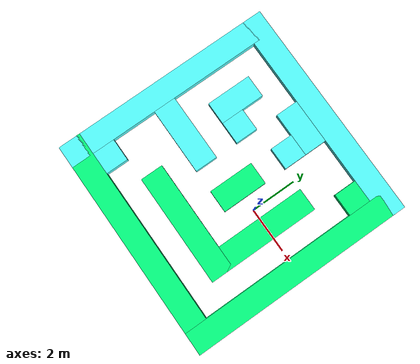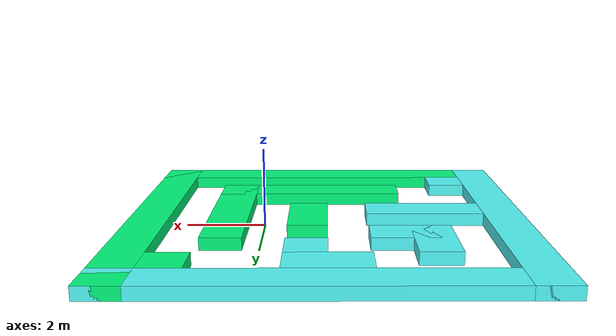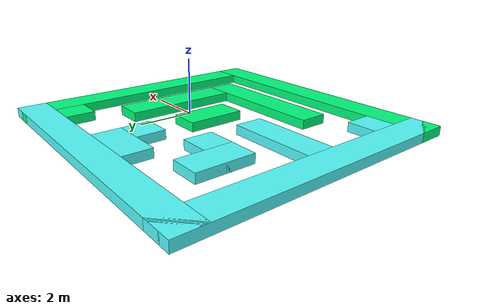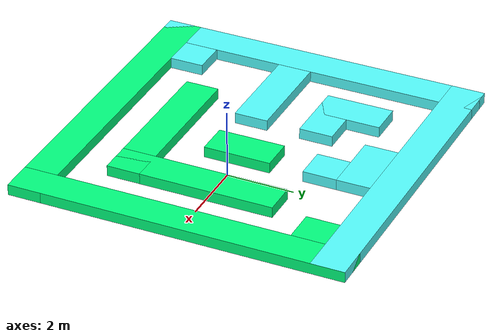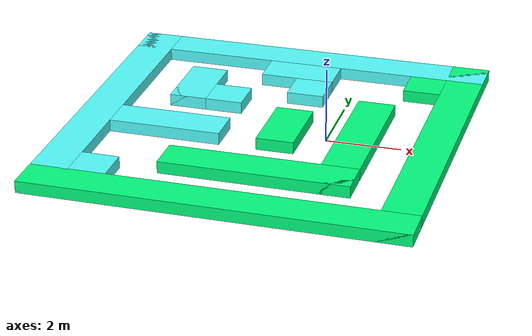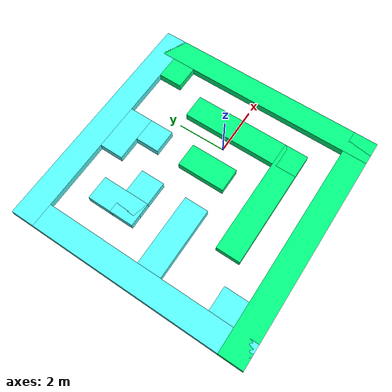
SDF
<?xml version='1.0'?>
<sdf version='1.6'>
  <model name='gait_maze2.0'>
    <link name='Wall_10'>
      <pose frame=''>-4.10576 2 0 0 0 -1.5708</pose>
      <self_collide>0</self_collide>
      <kinematic>0</kinematic>
      <visual name='Wall_10_Visual'>
        <pose frame=''>0 0 0.16 0 -0 0</pose>
        <geometry>
          <box>
            <size>2 1 0.32</size>
          </box>
        </geometry>
        <material>
          <script>
            <uri>file://media/materials/scripts/gazebo.material</uri>
            <name>Gazebo/Grey</name>
          </script>
          <ambient>0.333333 1 1 1</ambient>
          <diffuse>0.7 0.7 0.7 1</diffuse>
          <specular>0.01 0.01 0.01 1</specular>
          <emissive>0 0 0 1</emissive>
        </material>
        <cast_shadows>1</cast_shadows>
        <transparency>0</transparency>
      </visual>
      <collision name='Wall_10_Collision'>
        <laser_retro>0</laser_retro>
        <max_contacts>10</max_contacts>
        <pose frame=''>0 0 0.16 0 -0 0</pose>
        <geometry>
          <box>
            <size>2 1 0.32</size>
          </box>
        </geometry>
        <surface>
          <friction>
            <ode>
              <mu>1</mu>
              <mu2>1</mu2>
              <fdir1>0 0 0</fdir1>
              <slip1>0</slip1>
              <slip2>0</slip2>
            </ode>
            <torsional>
              <coefficient>1</coefficient>
              <patch_radius>0</patch_radius>
              <surface_radius>0</surface_radius>
              <use_patch_radius>1</use_patch_radius>
              <ode>
                <slip>0</slip>
              </ode>
            </torsional>
          </friction>
          <bounce>
            <restitution_coefficient>0</restitution_coefficient>
            <threshold>1e+06</threshold>
          </bounce>
          <contact>
            <collide_without_contact>0</collide_without_contact>
            <collide_without_contact_bitmask>1</collide_without_contact_bitmask>
            <collide_bitmask>1</collide_bitmask>
            <ode>
              <soft_cfm>0</soft_cfm>
              <soft_erp>0.2</soft_erp>
              <kp>1e+13</kp>
              <kd>1</kd>
              <max_vel>0.01</max_vel>
              <min_depth>0</min_depth>
            </ode>
            <bullet>
              <split_impulse>1</split_impulse>
              <split_impulse_penetration_threshold>-0.01</split_impulse_penetration_threshold>
              <soft_cfm>0</soft_cfm>
              <soft_erp>0.2</soft_erp>
              <kp>1e+13</kp>
              <kd>1</kd>
            </bullet>
          </contact>
        </surface>
      </collision>
    </link>
    <link name='Wall_13'>
      <pose frame=''>-3.60576 1.5 0 0 -0 0</pose>
      <self_collide>0</self_collide>
      <kinematic>0</kinematic>
      <visual name='Wall_13_Visual'>
        <pose frame=''>0 0 0.16 0 -0 0</pose>
        <geometry>
          <box>
            <size>2 1 0.32</size>
          </box>
        </geometry>
        <material>
          <script>
            <uri>file://media/materials/scripts/gazebo.material</uri>
            <name>Gazebo/Grey</name>
          </script>
          <ambient>0.333333 1 1 1</ambient>
          <diffuse>0.7 0.7 0.7 1</diffuse>
          <specular>0.01 0.01 0.01 1</specular>
          <emissive>0 0 0 1</emissive>
        </material>
        <cast_shadows>1</cast_shadows>
        <transparency>0</transparency>
      </visual>
      <collision name='Wall_13_Collision'>
        <laser_retro>0</laser_retro>
        <max_contacts>10</max_contacts>
        <pose frame=''>0 0 0.16 0 -0 0</pose>
        <geometry>
          <box>
            <size>2 1 0.32</size>
          </box>
        </geometry>
        <surface>
          <friction>
            <ode>
              <mu>1</mu>
              <mu2>1</mu2>
              <fdir1>0 0 0</fdir1>
              <slip1>0</slip1>
              <slip2>0</slip2>
            </ode>
            <torsional>
              <coefficient>1</coefficient>
              <patch_radius>0</patch_radius>
              <surface_radius>0</surface_radius>
              <use_patch_radius>1</use_patch_radius>
              <ode>
                <slip>0</slip>
              </ode>
            </torsional>
          </friction>
          <bounce>
            <restitution_coefficient>0</restitution_coefficient>
            <threshold>1e+06</threshold>
          </bounce>
          <contact>
            <collide_without_contact>0</collide_without_contact>
            <collide_without_contact_bitmask>1</collide_without_contact_bitmask>
            <collide_bitmask>1</collide_bitmask>
            <ode>
              <soft_cfm>0</soft_cfm>
              <soft_erp>0.2</soft_erp>
              <kp>1e+13</kp>
              <kd>1</kd>
              <max_vel>0.01</max_vel>
              <min_depth>0</min_depth>
            </ode>
            <bullet>
              <split_impulse>1</split_impulse>
              <split_impulse_penetration_threshold>-0.01</split_impulse_penetration_threshold>
              <soft_cfm>0</soft_cfm>
              <soft_erp>0.2</soft_erp>
              <kp>1e+13</kp>
              <kd>1</kd>
            </bullet>
          </contact>
        </surface>
      </collision>
    </link>
    <link name='Wall_15'>
      <pose frame=''>-1.60576 3.5 0 0 -0 0</pose>
      <self_collide>0</self_collide>
      <kinematic>0</kinematic>
      <visual name='Wall_15_Visual'>
        <pose frame=''>0 0 0.16 0 -0 0</pose>
        <geometry>
          <box>
            <size>2 1 0.32</size>
          </box>
        </geometry>
        <material>
          <script>
            <uri>file://media/materials/scripts/gazebo.material</uri>
            <name>Gazebo/Grey</name>
          </script>
          <ambient>0.333333 1 1 1</ambient>
          <diffuse>0.7 0.7 0.7 1</diffuse>
          <specular>0.01 0.01 0.01 1</specular>
          <emissive>0 0 0 1</emissive>
        </material>
        <cast_shadows>1</cast_shadows>
        <transparency>0</transparency>
      </visual>
      <collision name='Wall_15_Collision'>
        <laser_retro>0</laser_retro>
        <max_contacts>10</max_contacts>
        <pose frame=''>0 0 0.16 0 -0 0</pose>
        <geometry>
          <box>
            <size>2 1 0.32</size>
          </box>
        </geometry>
        <surface>
          <friction>
            <ode>
              <mu>1</mu>
              <mu2>1</mu2>
              <fdir1>0 0 0</fdir1>
              <slip1>0</slip1>
              <slip2>0</slip2>
            </ode>
            <torsional>
              <coefficient>1</coefficient>
              <patch_radius>0</patch_radius>
              <surface_radius>0</surface_radius>
              <use_patch_radius>1</use_patch_radius>
              <ode>
                <slip>0</slip>
              </ode>
            </torsional>
          </friction>
          <bounce>
            <restitution_coefficient>0</restitution_coefficient>
            <threshold>1e+06</threshold>
          </bounce>
          <contact>
            <collide_without_contact>0</collide_without_contact>
            <collide_without_contact_bitmask>1</collide_without_contact_bitmask>
            <collide_bitmask>1</collide_bitmask>
            <ode>
              <soft_cfm>0</soft_cfm>
              <soft_erp>0.2</soft_erp>
              <kp>1e+13</kp>
              <kd>1</kd>
              <max_vel>0.01</max_vel>
              <min_depth>0</min_depth>
            </ode>
            <bullet>
              <split_impulse>1</split_impulse>
              <split_impulse_penetration_threshold>-0.01</split_impulse_penetration_threshold>
              <soft_cfm>0</soft_cfm>
              <soft_erp>0.2</soft_erp>
              <kp>1e+13</kp>
              <kd>1</kd>
            </bullet>
          </contact>
        </surface>
      </collision>
    </link>
    <link name='Wall_17'>
      <pose frame=''>1.89474 3.5 0 0 -0 0</pose>
      <self_collide>0</self_collide>
      <kinematic>0</kinematic>
      <visual name='Wall_17_Visual'>
        <pose frame=''>0 0 0.16 0 -0 0</pose>
        <geometry>
          <box>
            <size>1 1 0.32</size>
          </box>
        </geometry>
        <material>
          <script>
            <uri>file://media/materials/scripts/gazebo.material</uri>
            <name>Gazebo/Grey</name>
          </script>
          <ambient>0 1 0.498039 1</ambient>
          <diffuse>0.7 0.7 0.7 1</diffuse>
          <specular>0.01 0.01 0.01 1</specular>
          <emissive>0 0 0 1</emissive>
        </material>
        <cast_shadows>1</cast_shadows>
        <transparency>0</transparency>
      </visual>
      <collision name='Wall_17_Collision'>
        <laser_retro>0</laser_retro>
        <max_contacts>10</max_contacts>
        <pose frame=''>0 0 0.16 0 -0 0</pose>
        <geometry>
          <box>
            <size>1 1 0.32</size>
          </box>
        </geometry>
        <surface>
          <friction>
            <ode>
              <mu>1</mu>
              <mu2>1</mu2>
              <fdir1>0 0 0</fdir1>
              <slip1>0</slip1>
              <slip2>0</slip2>
            </ode>
            <torsional>
              <coefficient>1</coefficient>
              <patch_radius>0</patch_radius>
              <surface_radius>0</surface_radius>
              <use_patch_radius>1</use_patch_radius>
              <ode>
                <slip>0</slip>
              </ode>
            </torsional>
          </friction>
          <bounce>
            <restitution_coefficient>0</restitution_coefficient>
            <threshold>1e+06</threshold>
          </bounce>
          <contact>
            <collide_without_contact>0</collide_without_contact>
            <collide_without_contact_bitmask>1</collide_without_contact_bitmask>
            <collide_bitmask>1</collide_bitmask>
            <ode>
              <soft_cfm>0</soft_cfm>
              <soft_erp>0.2</soft_erp>
              <kp>1e+13</kp>
              <kd>1</kd>
              <max_vel>0.01</max_vel>
              <min_depth>0</min_depth>
            </ode>
            <bullet>
              <split_impulse>1</split_impulse>
              <split_impulse_penetration_threshold>-0.01</split_impulse_penetration_threshold>
              <soft_cfm>0</soft_cfm>
              <soft_erp>0.2</soft_erp>
              <kp>1e+13</kp>
              <kd>1</kd>
            </bullet>
          </contact>
        </surface>
      </collision>
    </link>
    <link name='Wall_19'>
      <pose frame=''>-5.10626 -3.5 0 0 -0 0</pose>
      <self_collide>0</self_collide>
      <kinematic>0</kinematic>
      <visual name='Wall_19_Visual'>
        <pose frame=''>0 0 0.16 0 -0 0</pose>
        <geometry>
          <box>
            <size>1.001 1 0.32</size>
          </box>
        </geometry>
        <material>
          <script>
            <uri>file://media/materials/scripts/gazebo.material</uri>
            <name>Gazebo/Grey</name>
          </script>
          <ambient>0.333333 1 1 1</ambient>
          <diffuse>0.7 0.7 0.7 1</diffuse>
          <specular>0.01 0.01 0.01 1</specular>
          <emissive>0 0 0 1</emissive>
        </material>
        <cast_shadows>1</cast_shadows>
        <transparency>0</transparency>
      </visual>
      <collision name='Wall_19_Collision'>
        <laser_retro>0</laser_retro>
        <max_contacts>10</max_contacts>
        <pose frame=''>0 0 0.16 0 -0 0</pose>
        <geometry>
          <box>
            <size>1.001 1 0.32</size>
          </box>
        </geometry>
        <surface>
          <friction>
            <ode>
              <mu>1</mu>
              <mu2>1</mu2>
              <fdir1>0 0 0</fdir1>
              <slip1>0</slip1>
              <slip2>0</slip2>
            </ode>
            <torsional>
              <coefficient>1</coefficient>
              <patch_radius>0</patch_radius>
              <surface_radius>0</surface_radius>
              <use_patch_radius>1</use_patch_radius>
              <ode>
                <slip>0</slip>
              </ode>
            </torsional>
          </friction>
          <bounce>
            <restitution_coefficient>0</restitution_coefficient>
            <threshold>1e+06</threshold>
          </bounce>
          <contact>
            <collide_without_contact>0</collide_without_contact>
            <collide_without_contact_bitmask>1</collide_without_contact_bitmask>
            <collide_bitmask>1</collide_bitmask>
            <ode>
              <soft_cfm>0</soft_cfm>
              <soft_erp>0.2</soft_erp>
              <kp>1e+13</kp>
              <kd>1</kd>
              <max_vel>0.01</max_vel>
              <min_depth>0</min_depth>
            </ode>
            <bullet>
              <split_impulse>1</split_impulse>
              <split_impulse_penetration_threshold>-0.01</split_impulse_penetration_threshold>
              <soft_cfm>0</soft_cfm>
              <soft_erp>0.2</soft_erp>
              <kp>1e+13</kp>
              <kd>1</kd>
            </bullet>
          </contact>
        </surface>
      </collision>
    </link>
    <link name='Wall_2'>
      <pose frame=''>-6.10576 0 0 0 -0 1.5708</pose>
      <self_collide>0</self_collide>
      <kinematic>0</kinematic>
      <visual name='Wall_2_Visual'>
        <pose frame=''>0 0 0.16 0 -0 0</pose>
        <geometry>
          <box>
            <size>10 1 0.32</size>
          </box>
        </geometry>
        <material>
          <script>
            <uri>file://media/materials/scripts/gazebo.material</uri>
            <name>Gazebo/Grey</name>
          </script>
          <ambient>0.333333 1 1 1</ambient>
          <diffuse>0.7 0.7 0.7 1</diffuse>
          <specular>0.01 0.01 0.01 1</specular>
          <emissive>0 0 0 1</emissive>
        </material>
        <cast_shadows>1</cast_shadows>
        <transparency>0</transparency>
      </visual>
      <collision name='Wall_2_Collision'>
        <laser_retro>0</laser_retro>
        <max_contacts>10</max_contacts>
        <pose frame=''>0 0 0.16 0 -0 0</pose>
        <geometry>
          <box>
            <size>10 1 0.32</size>
          </box>
        </geometry>
        <surface>
          <friction>
            <ode>
              <mu>1</mu>
              <mu2>1</mu2>
              <fdir1>0 0 0</fdir1>
              <slip1>0</slip1>
              <slip2>0</slip2>
            </ode>
            <torsional>
              <coefficient>1</coefficient>
              <patch_radius>0</patch_radius>
              <surface_radius>0</surface_radius>
              <use_patch_radius>1</use_patch_radius>
              <ode>
                <slip>0</slip>
              </ode>
            </torsional>
          </friction>
          <bounce>
            <restitution_coefficient>0</restitution_coefficient>
            <threshold>1e+06</threshold>
          </bounce>
          <contact>
            <collide_without_contact>0</collide_without_contact>
            <collide_without_contact_bitmask>1</collide_without_contact_bitmask>
            <collide_bitmask>1</collide_bitmask>
            <ode>
              <soft_cfm>0</soft_cfm>
              <soft_erp>0.2</soft_erp>
              <kp>1e+13</kp>
              <kd>1</kd>
              <max_vel>0.01</max_vel>
              <min_depth>0</min_depth>
            </ode>
            <bullet>
              <split_impulse>1</split_impulse>
              <split_impulse_penetration_threshold>-0.01</split_impulse_penetration_threshold>
              <soft_cfm>0</soft_cfm>
              <soft_erp>0.2</soft_erp>
              <kp>1e+13</kp>
              <kd>1</kd>
            </bullet>
          </contact>
        </surface>
      </collision>
    </link>
    <link name='Wall_21'>
      <pose frame=''>-1.10576 -2.5 0 0 -0 0</pose>
      <self_collide>0</self_collide>
      <kinematic>0</kinematic>
      <visual name='Wall_21_Visual'>
        <pose frame=''>0 0 0.16 0 -0 0</pose>
        <geometry>
          <box>
            <size>5 1 0.32</size>
          </box>
        </geometry>
        <material>
          <script>
            <uri>file://media/materials/scripts/gazebo.material</uri>
            <name>Gazebo/Grey</name>
          </script>
          <ambient>0 1 0.498039 1</ambient>
          <diffuse>0.7 0.7 0.7 1</diffuse>
          <specular>0.01 0.01 0.01 1</specular>
          <emissive>0 0 0 1</emissive>
        </material>
        <cast_shadows>1</cast_shadows>
        <transparency>0</transparency>
      </visual>
      <collision name='Wall_21_Collision'>
        <laser_retro>0</laser_retro>
        <max_contacts>10</max_contacts>
        <pose frame=''>0 0 0.16 0 -0 0</pose>
        <geometry>
          <box>
            <size>5 1 0.32</size>
          </box>
        </geometry>
        <surface>
          <friction>
            <ode>
              <mu>1</mu>
              <mu2>1</mu2>
              <fdir1>0 0 0</fdir1>
              <slip1>0</slip1>
              <slip2>0</slip2>
            </ode>
            <torsional>
              <coefficient>1</coefficient>
              <patch_radius>0</patch_radius>
              <surface_radius>0</surface_radius>
              <use_patch_radius>1</use_patch_radius>
              <ode>
                <slip>0</slip>
              </ode>
            </torsional>
          </friction>
          <bounce>
            <restitution_coefficient>0</restitution_coefficient>
            <threshold>1e+06</threshold>
          </bounce>
          <contact>
            <collide_without_contact>0</collide_without_contact>
            <collide_without_contact_bitmask>1</collide_without_contact_bitmask>
            <collide_bitmask>1</collide_bitmask>
            <ode>
              <soft_cfm>0</soft_cfm>
              <soft_erp>0.2</soft_erp>
              <kp>1e+13</kp>
              <kd>1</kd>
              <max_vel>0.01</max_vel>
              <min_depth>0</min_depth>
            </ode>
            <bullet>
              <split_impulse>1</split_impulse>
              <split_impulse_penetration_threshold>-0.01</split_impulse_penetration_threshold>
              <soft_cfm>0</soft_cfm>
              <soft_erp>0.2</soft_erp>
              <kp>1e+13</kp>
              <kd>1</kd>
            </bullet>
          </contact>
        </surface>
      </collision>
    </link>
    <link name='Wall_23'>
      <pose frame=''>0.89424 -0.5 0 0 0 -1.5708</pose>
      <self_collide>0</self_collide>
      <kinematic>0</kinematic>
      <visual name='Wall_23_Visual'>
        <pose frame=''>0 0 0.16 0 -0 0</pose>
        <geometry>
          <box>
            <size>5 1 0.32</size>
          </box>
        </geometry>
        <material>
          <script>
            <uri>file://media/materials/scripts/gazebo.material</uri>
            <name>Gazebo/Grey</name>
          </script>
          <ambient>0 1 0.498039 1</ambient>
          <diffuse>0.7 0.7 0.7 1</diffuse>
          <specular>0.01 0.01 0.01 1</specular>
          <emissive>0 0 0 1</emissive>
        </material>
        <cast_shadows>1</cast_shadows>
        <transparency>0</transparency>
      </visual>
      <collision name='Wall_23_Collision'>
        <laser_retro>0</laser_retro>
        <max_contacts>10</max_contacts>
        <pose frame=''>0 0 0.16 0 -0 0</pose>
        <geometry>
          <box>
            <size>5 1 0.32</size>
          </box>
        </geometry>
        <surface>
          <friction>
            <ode>
              <mu>1</mu>
              <mu2>1</mu2>
              <fdir1>0 0 0</fdir1>
              <slip1>0</slip1>
              <slip2>0</slip2>
            </ode>
            <torsional>
              <coefficient>1</coefficient>
              <patch_radius>0</patch_radius>
              <surface_radius>0</surface_radius>
              <use_patch_radius>1</use_patch_radius>
              <ode>
                <slip>0</slip>
              </ode>
            </torsional>
          </friction>
          <bounce>
            <restitution_coefficient>0</restitution_coefficient>
            <threshold>1e+06</threshold>
          </bounce>
          <contact>
            <collide_without_contact>0</collide_without_contact>
            <collide_without_contact_bitmask>1</collide_without_contact_bitmask>
            <collide_bitmask>1</collide_bitmask>
            <ode>
              <soft_cfm>0</soft_cfm>
              <soft_erp>0.2</soft_erp>
              <kp>1e+13</kp>
              <kd>1</kd>
              <max_vel>0.01</max_vel>
              <min_depth>0</min_depth>
            </ode>
            <bullet>
              <split_impulse>1</split_impulse>
              <split_impulse_penetration_threshold>-0.01</split_impulse_penetration_threshold>
              <soft_cfm>0</soft_cfm>
              <soft_erp>0.2</soft_erp>
              <kp>1e+13</kp>
              <kd>1</kd>
            </bullet>
          </contact>
        </surface>
      </collision>
    </link>
    <link name='Wall_25'>
      <pose frame=''>-4.10576 -0.5 0 0 -0 0</pose>
      <self_collide>0</self_collide>
      <kinematic>0</kinematic>
      <visual name='Wall_25_Visual'>
        <pose frame=''>0 0 0.16 0 -0 0</pose>
        <geometry>
          <box>
            <size>3 1 0.32</size>
          </box>
        </geometry>
        <material>
          <script>
            <uri>file://media/materials/scripts/gazebo.material</uri>
            <name>Gazebo/Grey</name>
          </script>
          <ambient>0.333333 1 1 1</ambient>
          <diffuse>0.7 0.7 0.7 1</diffuse>
          <specular>0.01 0.01 0.01 1</specular>
          <emissive>0 0 0 1</emissive>
        </material>
        <cast_shadows>1</cast_shadows>
        <transparency>0</transparency>
      </visual>
      <collision name='Wall_25_Collision'>
        <laser_retro>0</laser_retro>
        <max_contacts>10</max_contacts>
        <pose frame=''>0 0 0.16 0 -0 0</pose>
        <geometry>
          <box>
            <size>3 1 0.32</size>
          </box>
        </geometry>
        <surface>
          <friction>
            <ode>
              <mu>1</mu>
              <mu2>1</mu2>
              <fdir1>0 0 0</fdir1>
              <slip1>0</slip1>
              <slip2>0</slip2>
            </ode>
            <torsional>
              <coefficient>1</coefficient>
              <patch_radius>0</patch_radius>
              <surface_radius>0</surface_radius>
              <use_patch_radius>1</use_patch_radius>
              <ode>
                <slip>0</slip>
              </ode>
            </torsional>
          </friction>
          <bounce>
            <restitution_coefficient>0</restitution_coefficient>
            <threshold>1e+06</threshold>
          </bounce>
          <contact>
            <collide_without_contact>0</collide_without_contact>
            <collide_without_contact_bitmask>1</collide_without_contact_bitmask>
            <collide_bitmask>1</collide_bitmask>
            <ode>
              <soft_cfm>0</soft_cfm>
              <soft_erp>0.2</soft_erp>
              <kp>1e+13</kp>
              <kd>1</kd>
              <max_vel>0.01</max_vel>
              <min_depth>0</min_depth>
            </ode>
            <bullet>
              <split_impulse>1</split_impulse>
              <split_impulse_penetration_threshold>-0.01</split_impulse_penetration_threshold>
              <soft_cfm>0</soft_cfm>
              <soft_erp>0.2</soft_erp>
              <kp>1e+13</kp>
              <kd>1</kd>
            </bullet>
          </contact>
        </surface>
      </collision>
    </link>
    <link name='Wall_28'>
      <pose frame=''>-1.10576 0 0 0 -0 1.5708</pose>
      <self_collide>0</self_collide>
      <kinematic>0</kinematic>
      <visual name='Wall_28_Visual'>
        <pose frame=''>0 0 0.16 0 -0 0</pose>
        <geometry>
          <box>
            <size>2 1 0.32</size>
          </box>
        </geometry>
        <material>
          <script>
            <uri>file://media/materials/scripts/gazebo.material</uri>
            <name>Gazebo/Grey</name>
          </script>
          <ambient>0 1 0.498039 1</ambient>
          <diffuse>0.7 0.7 0.7 1</diffuse>
          <specular>0.01 0.01 0.01 1</specular>
          <emissive>0 0 0 1</emissive>
        </material>
        <cast_shadows>1</cast_shadows>
        <transparency>0</transparency>
      </visual>
      <collision name='Wall_28_Collision'>
        <laser_retro>0</laser_retro>
        <max_contacts>10</max_contacts>
        <pose frame=''>0 0 0.16 0 -0 0</pose>
        <geometry>
          <box>
            <size>2 1 0.32</size>
          </box>
        </geometry>
        <surface>
          <friction>
            <ode>
              <mu>1</mu>
              <mu2>1</mu2>
              <fdir1>0 0 0</fdir1>
              <slip1>0</slip1>
              <slip2>0</slip2>
            </ode>
            <torsional>
              <coefficient>1</coefficient>
              <patch_radius>0</patch_radius>
              <surface_radius>0</surface_radius>
              <use_patch_radius>1</use_patch_radius>
              <ode>
                <slip>0</slip>
              </ode>
            </torsional>
          </friction>
          <bounce>
            <restitution_coefficient>0</restitution_coefficient>
            <threshold>1e+06</threshold>
          </bounce>
          <contact>
            <collide_without_contact>0</collide_without_contact>
            <collide_without_contact_bitmask>1</collide_without_contact_bitmask>
            <collide_bitmask>1</collide_bitmask>
            <ode>
              <soft_cfm>0</soft_cfm>
              <soft_erp>0.2</soft_erp>
              <kp>1e+13</kp>
              <kd>1</kd>
              <max_vel>0.01</max_vel>
              <min_depth>0</min_depth>
            </ode>
            <bullet>
              <split_impulse>1</split_impulse>
              <split_impulse_penetration_threshold>-0.01</split_impulse_penetration_threshold>
              <soft_cfm>0</soft_cfm>
              <soft_erp>0.2</soft_erp>
              <kp>1e+13</kp>
              <kd>1</kd>
            </bullet>
          </contact>
        </surface>
      </collision>
    </link>
    <link name='Wall_34'>
      <pose frame=''>-1.10576 2.5005 0 0 -0 1.5708</pose>
      <self_collide>0</self_collide>
      <kinematic>0</kinematic>
      <visual name='Wall_34_Visual'>
        <pose frame=''>0 0 0.16 0 -0 0</pose>
        <geometry>
          <box>
            <size>1.001 1 0.32</size>
          </box>
        </geometry>
        <material>
          <script>
            <uri>file://media/materials/scripts/gazebo.material</uri>
            <name>Gazebo/Grey</name>
          </script>
          <ambient>0.333333 1 1 1</ambient>
          <diffuse>0.7 0.7 0.7 1</diffuse>
          <specular>0.01 0.01 0.01 1</specular>
          <emissive>0 0 0 1</emissive>
        </material>
        <cast_shadows>1</cast_shadows>
        <transparency>0</transparency>
      </visual>
      <collision name='Wall_34_Collision'>
        <laser_retro>0</laser_retro>
        <max_contacts>10</max_contacts>
        <pose frame=''>0 0 0.16 0 -0 0</pose>
        <geometry>
          <box>
            <size>1.001 1 0.32</size>
          </box>
        </geometry>
        <surface>
          <friction>
            <ode>
              <mu>1</mu>
              <mu2>1</mu2>
              <fdir1>0 0 0</fdir1>
              <slip1>0</slip1>
              <slip2>0</slip2>
            </ode>
            <torsional>
              <coefficient>1</coefficient>
              <patch_radius>0</patch_radius>
              <surface_radius>0</surface_radius>
              <use_patch_radius>1</use_patch_radius>
              <ode>
                <slip>0</slip>
              </ode>
            </torsional>
          </friction>
          <bounce>
            <restitution_coefficient>0</restitution_coefficient>
            <threshold>1e+06</threshold>
          </bounce>
          <contact>
            <collide_without_contact>0</collide_without_contact>
            <collide_without_contact_bitmask>1</collide_without_contact_bitmask>
            <collide_bitmask>1</collide_bitmask>
            <ode>
              <soft_cfm>0</soft_cfm>
              <soft_erp>0.2</soft_erp>
              <kp>1e+13</kp>
              <kd>1</kd>
              <max_vel>0.01</max_vel>
              <min_depth>0</min_depth>
            </ode>
            <bullet>
              <split_impulse>1</split_impulse>
              <split_impulse_penetration_threshold>-0.01</split_impulse_penetration_threshold>
              <soft_cfm>0</soft_cfm>
              <soft_erp>0.2</soft_erp>
              <kp>1e+13</kp>
              <kd>1</kd>
            </bullet>
          </contact>
        </surface>
      </collision>
    </link>
    <link name='Wall_4'>
      <pose frame=''>-1.60576 4.5 0 0 -0 0</pose>
      <self_collide>0</self_collide>
      <kinematic>0</kinematic>
      <visual name='Wall_4_Visual'>
        <pose frame=''>0 0 0.16 0 -0 0</pose>
        <geometry>
          <box>
            <size>10 1 0.32</size>
          </box>
        </geometry>
        <material>
          <script>
            <uri>file://media/materials/scripts/gazebo.material</uri>
            <name>Gazebo/Grey</name>
          </script>
          <ambient>0.333333 1 1 1</ambient>
          <diffuse>0.7 0.7 0.7 1</diffuse>
          <specular>0.01 0.01 0.01 1</specular>
          <emissive>0 0 0 1</emissive>
        </material>
        <cast_shadows>1</cast_shadows>
        <transparency>0</transparency>
      </visual>
      <collision name='Wall_4_Collision'>
        <laser_retro>0</laser_retro>
        <max_contacts>10</max_contacts>
        <pose frame=''>0 0 0.16 0 -0 0</pose>
        <geometry>
          <box>
            <size>10 1 0.32</size>
          </box>
        </geometry>
        <surface>
          <friction>
            <ode>
              <mu>1</mu>
              <mu2>1</mu2>
              <fdir1>0 0 0</fdir1>
              <slip1>0</slip1>
              <slip2>0</slip2>
            </ode>
            <torsional>
              <coefficient>1</coefficient>
              <patch_radius>0</patch_radius>
              <surface_radius>0</surface_radius>
              <use_patch_radius>1</use_patch_radius>
              <ode>
                <slip>0</slip>
              </ode>
            </torsional>
          </friction>
          <bounce>
            <restitution_coefficient>0</restitution_coefficient>
            <threshold>1e+06</threshold>
          </bounce>
          <contact>
            <collide_without_contact>0</collide_without_contact>
            <collide_without_contact_bitmask>1</collide_without_contact_bitmask>
            <collide_bitmask>1</collide_bitmask>
            <ode>
              <soft_cfm>0</soft_cfm>
              <soft_erp>0.2</soft_erp>
              <kp>1e+13</kp>
              <kd>1</kd>
              <max_vel>0.01</max_vel>
              <min_depth>0</min_depth>
            </ode>
            <bullet>
              <split_impulse>1</split_impulse>
              <split_impulse_penetration_threshold>-0.01</split_impulse_penetration_threshold>
              <soft_cfm>0</soft_cfm>
              <soft_erp>0.2</soft_erp>
              <kp>1e+13</kp>
              <kd>1</kd>
            </bullet>
          </contact>
        </surface>
      </collision>
    </link>
    <link name='Wall_6'>
      <pose frame=''>-1.60576 -4.5 0 0 -0 0</pose>
      <self_collide>0</self_collide>
      <kinematic>0</kinematic>
      <visual name='Wall_6_Visual'>
        <pose frame=''>0 0 0.16 0 -0 0</pose>
        <geometry>
          <box>
            <size>10 1 0.32</size>
          </box>
        </geometry>
        <material>
          <script>
            <uri>file://media/materials/scripts/gazebo.material</uri>
            <name>Gazebo/Grey</name>
          </script>
          <ambient>0 1 0.498039 1</ambient>
          <diffuse>0.7 0.7 0.7 1</diffuse>
          <specular>0.01 0.01 0.01 1</specular>
          <emissive>0 0 0 1</emissive>
        </material>
        <cast_shadows>1</cast_shadows>
        <transparency>0</transparency>
      </visual>
      <collision name='Wall_6_Collision'>
        <laser_retro>0</laser_retro>
        <max_contacts>10</max_contacts>
        <pose frame=''>0 0 0.16 0 -0 0</pose>
        <geometry>
          <box>
            <size>10 1 0.32</size>
          </box>
        </geometry>
        <surface>
          <friction>
            <ode>
              <mu>1</mu>
              <mu2>1</mu2>
              <fdir1>0 0 0</fdir1>
              <slip1>0</slip1>
              <slip2>0</slip2>
            </ode>
            <torsional>
              <coefficient>1</coefficient>
              <patch_radius>0</patch_radius>
              <surface_radius>0</surface_radius>
              <use_patch_radius>1</use_patch_radius>
              <ode>
                <slip>0</slip>
              </ode>
            </torsional>
          </friction>
          <bounce>
            <restitution_coefficient>0</restitution_coefficient>
            <threshold>1e+06</threshold>
          </bounce>
          <contact>
            <collide_without_contact>0</collide_without_contact>
            <collide_without_contact_bitmask>1</collide_without_contact_bitmask>
            <collide_bitmask>1</collide_bitmask>
            <ode>
              <soft_cfm>0</soft_cfm>
              <soft_erp>0.2</soft_erp>
              <kp>1e+13</kp>
              <kd>1</kd>
              <max_vel>0.01</max_vel>
              <min_depth>0</min_depth>
            </ode>
            <bullet>
              <split_impulse>1</split_impulse>
              <split_impulse_penetration_threshold>-0.01</split_impulse_penetration_threshold>
              <soft_cfm>0</soft_cfm>
              <soft_erp>0.2</soft_erp>
              <kp>1e+13</kp>
              <kd>1</kd>
            </bullet>
          </contact>
        </surface>
      </collision>
    </link>
    <link name='Wall_8'>
      <pose frame=''>2.89424 0 0 0 0 -1.5708</pose>
      <self_collide>0</self_collide>
      <kinematic>0</kinematic>
      <visual name='Wall_8_Visual'>
        <pose frame=''>0 0 0.16 0 -0 0</pose>
        <geometry>
          <box>
            <size>10 1 0.32</size>
          </box>
        </geometry>
        <material>
          <script>
            <uri>file://media/materials/scripts/gazebo.material</uri>
            <name>Gazebo/Grey</name>
          </script>
          <ambient>0 1 0.498039 1</ambient>
          <diffuse>0.7 0.7 0.7 1</diffuse>
          <specular>0.01 0.01 0.01 1</specular>
          <emissive>0 0 0 1</emissive>
        </material>
        <cast_shadows>1</cast_shadows>
        <transparency>0</transparency>
      </visual>
      <collision name='Wall_8_Collision'>
        <laser_retro>0</laser_retro>
        <max_contacts>10</max_contacts>
        <pose frame=''>0 0 0.16 0 -0 0</pose>
        <geometry>
          <box>
            <size>10 1 0.32</size>
          </box>
        </geometry>
        <surface>
          <friction>
            <ode>
              <mu>1</mu>
              <mu2>1</mu2>
              <fdir1>0 0 0</fdir1>
              <slip1>0</slip1>
              <slip2>0</slip2>
            </ode>
            <torsional>
              <coefficient>1</coefficient>
              <patch_radius>0</patch_radius>
              <surface_radius>0</surface_radius>
              <use_patch_radius>1</use_patch_radius>
              <ode>
                <slip>0</slip>
              </ode>
            </torsional>
          </friction>
          <bounce>
            <restitution_coefficient>0</restitution_coefficient>
            <threshold>1e+06</threshold>
          </bounce>
          <contact>
            <collide_without_contact>0</collide_without_contact>
            <collide_without_contact_bitmask>1</collide_without_contact_bitmask>
            <collide_bitmask>1</collide_bitmask>
            <ode>
              <soft_cfm>0</soft_cfm>
              <soft_erp>0.2</soft_erp>
              <kp>1e+13</kp>
              <kd>1</kd>
              <max_vel>0.01</max_vel>
              <min_depth>0</min_depth>
            </ode>
            <bullet>
              <split_impulse>1</split_impulse>
              <split_impulse_penetration_threshold>-0.01</split_impulse_penetration_threshold>
              <soft_cfm>0</soft_cfm>
              <soft_erp>0.2</soft_erp>
              <kp>1e+13</kp>
              <kd>1</kd>
            </bullet>
          </contact>
        </surface>
      </collision>
    </link>
    <static>1</static>
    <allow_auto_disable>1</allow_auto_disable>
  </model>
</sdf>
